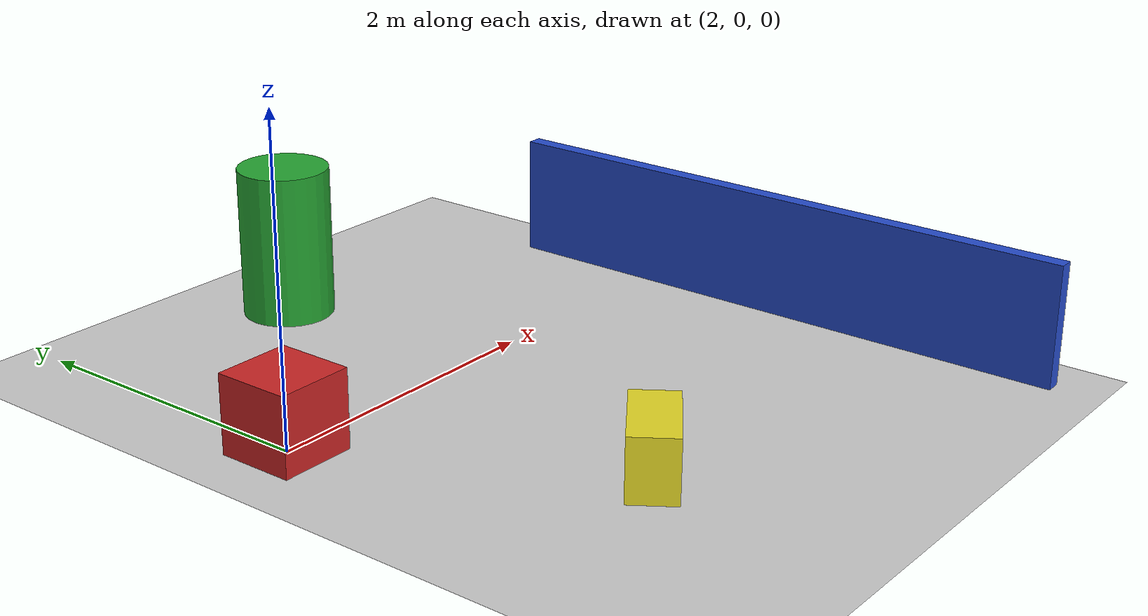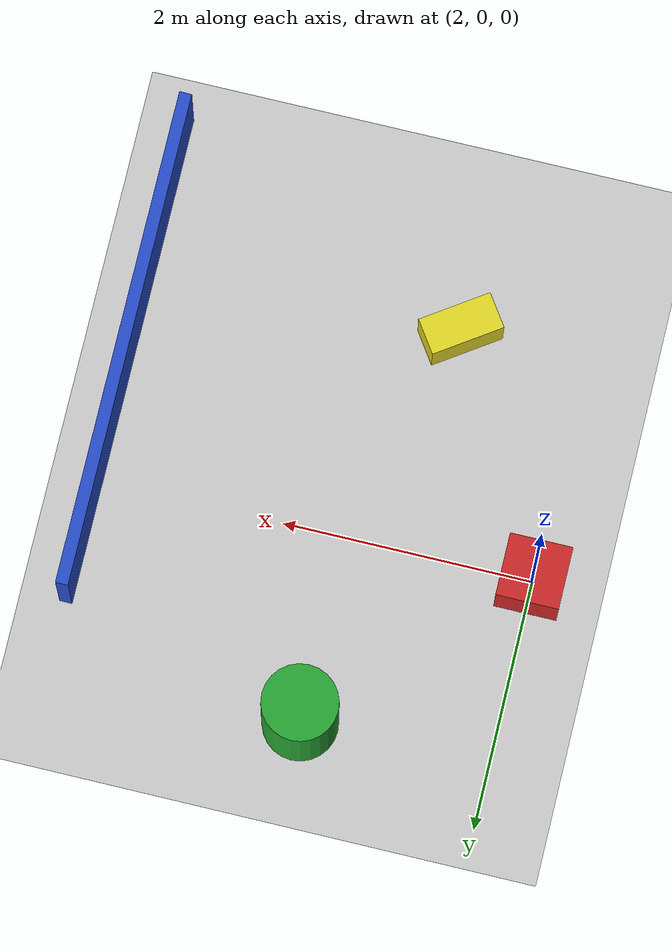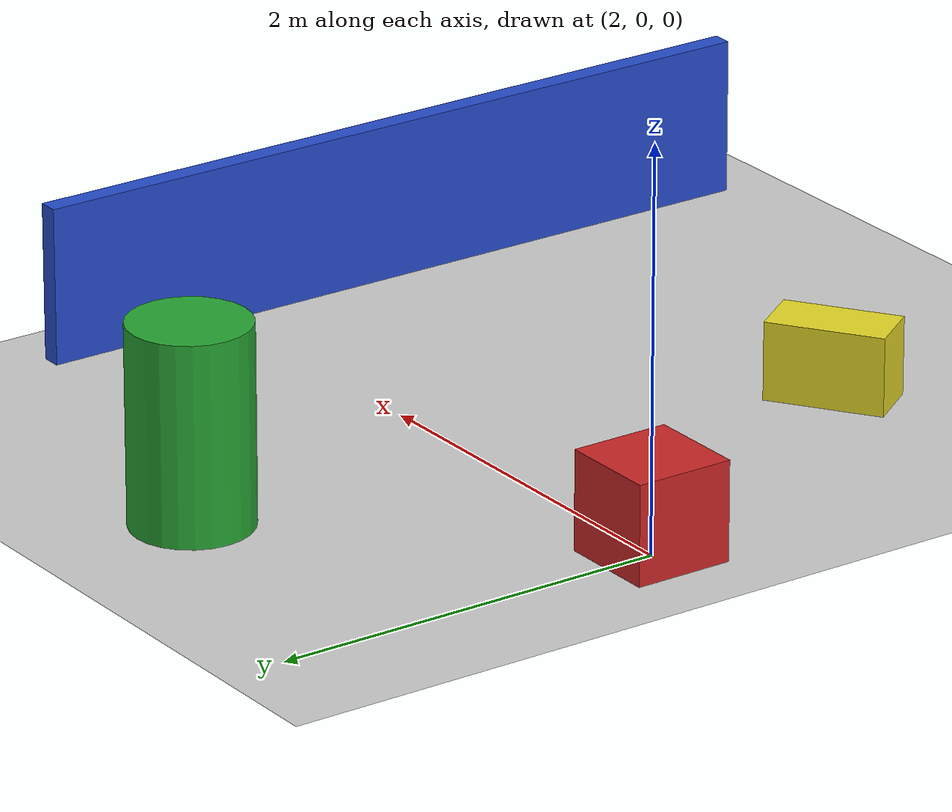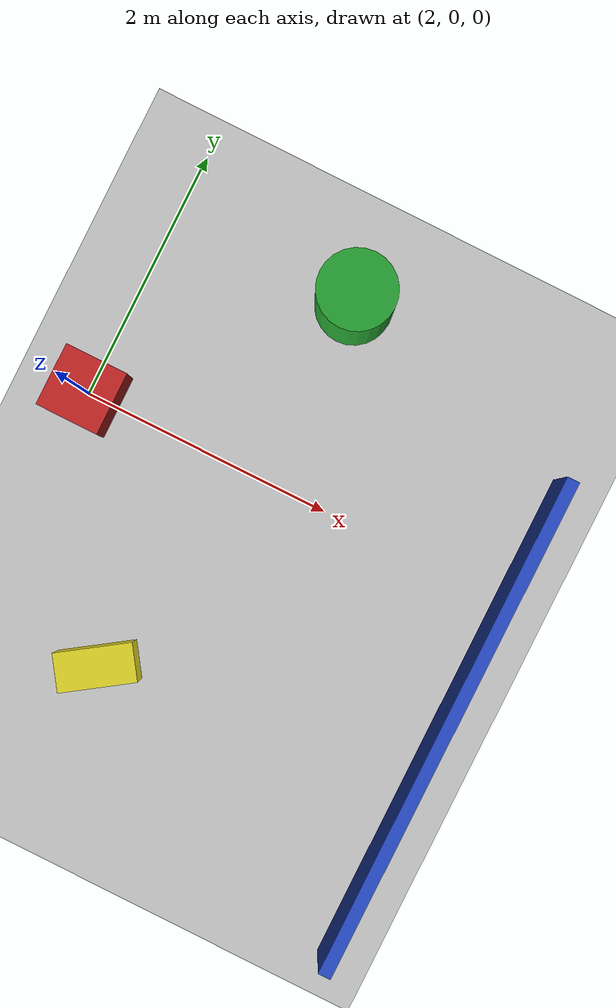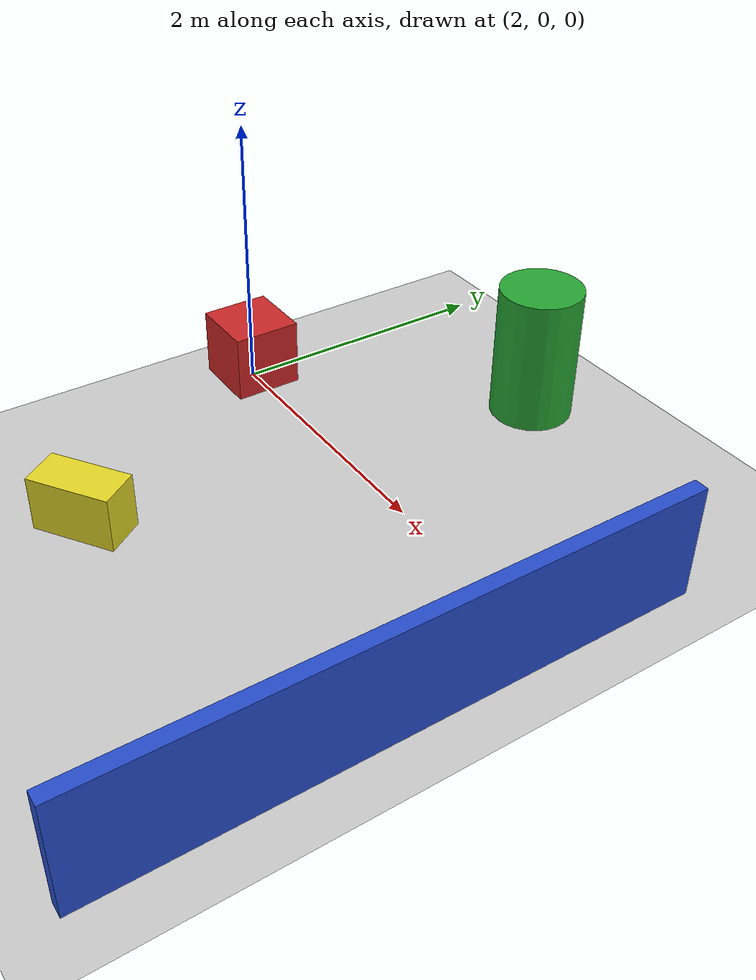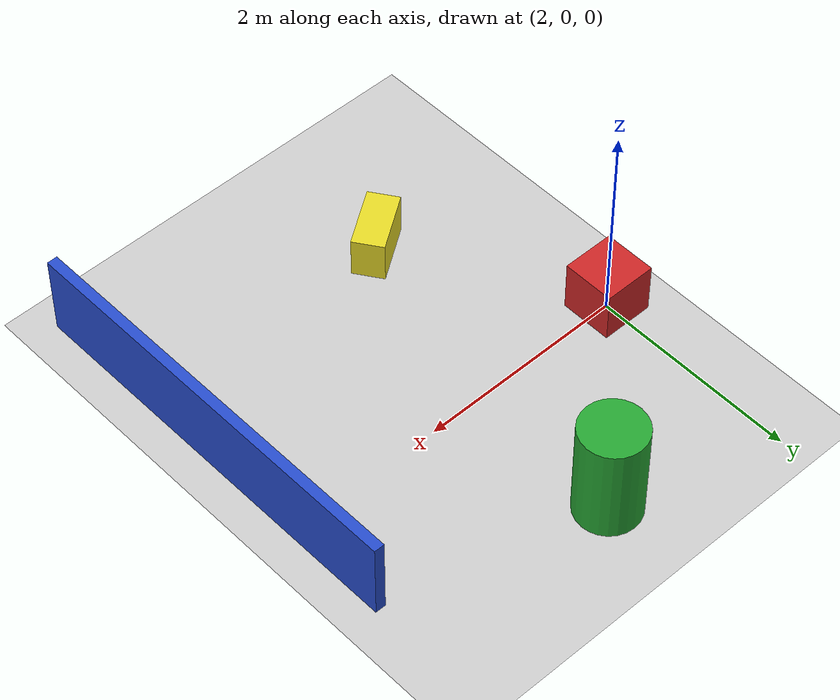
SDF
<?xml version="1.0" ?>
<sdf version="1.6">
  <world name="sensores_world">
    <!-- Pose exata dos modelos do simulador, sem ruído dos sensores/rodas. -->
    <plugin name="gazebo_ros_state" filename="libgazebo_ros_state.so">
      <ros>
        <namespace>/gazebo</namespace>
        <remapping>model_states:=model_states</remapping>
      </ros>
      <update_rate>50.0</update_rate>
    </plugin>

    <include>
      <uri>model://sun</uri>
    </include>
    <include>
      <uri>model://ground_plane</uri>
    </include>

    <spherical_coordinates>
      <surface_model>EARTH_WGS84</surface_model>
      <latitude_deg>-7.1396</latitude_deg>
      <longitude_deg>-34.8450</longitude_deg>
      <elevation>5.0</elevation>
      <heading_deg>180</heading_deg>
    </spherical_coordinates>

    <model name="caixa_vermelha">
      <static>true</static>
      <pose>2.0 0.0 0.25 0 0 0</pose>
      <link name="link">
        <collision name="collision">
          <geometry><box><size>0.5 0.5 0.5</size></box></geometry>
        </collision>
        <visual name="visual">
          <geometry><box><size>0.5 0.5 0.5</size></box></geometry>
          <material>
            <script>
              <uri>file://media/materials/scripts/gazebo.material</uri>
              <name>Gazebo/Red</name>
            </script>
          </material>
        </visual>
      </link>
    </model>

    <model name="cilindro_verde">
      <static>true</static>
      <pose>3.5 1.5 0.5 0 0 0</pose>
      <link name="link">
        <collision name="collision">
          <geometry><cylinder><radius>0.3</radius><length>1.0</length></cylinder></geometry>
        </collision>
        <visual name="visual">
          <geometry><cylinder><radius>0.3</radius><length>1.0</length></cylinder></geometry>
          <material>
            <script>
              <uri>file://media/materials/scripts/gazebo.material</uri>
              <name>Gazebo/Green</name>
            </script>
          </material>
        </visual>
      </link>
    </model>

    <model name="parede_azul">
      <static>true</static>
      <pose>5.5 -1.0 0.4 0 0 0</pose>
      <link name="link">
        <collision name="collision">
          <geometry><box><size>0.1 4.0 0.8</size></box></geometry>
        </collision>
        <visual name="visual">
          <geometry><box><size>0.1 4.0 0.8</size></box></geometry>
          <material>
            <script>
              <uri>file://media/materials/scripts/gazebo.material</uri>
              <name>Gazebo/Blue</name>
            </script>
          </material>
        </visual>
      </link>
    </model>

    <model name="caixa_amarela">
      <static>true</static>
      <pose>3.0 -1.8 0.2 0 0 0.6</pose>
      <link name="link">
        <collision name="collision">
          <geometry><box><size>0.6 0.3 0.4</size></box></geometry>
        </collision>
        <visual name="visual">
          <geometry><box><size>0.6 0.3 0.4</size></box></geometry>
          <material>
            <script>
              <uri>file://media/materials/scripts/gazebo.material</uri>
              <name>Gazebo/Yellow</name>
            </script>
          </material>
        </visual>
      </link>
    </model>
  </world>
</sdf>
